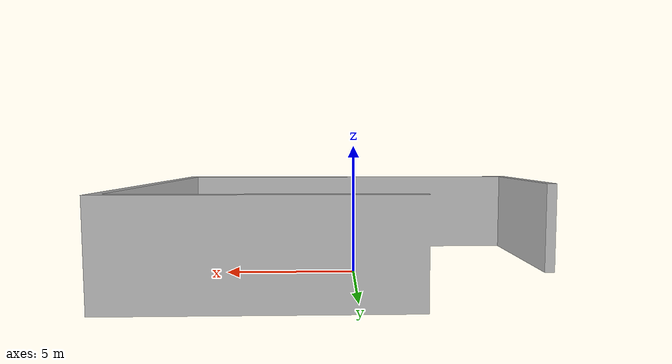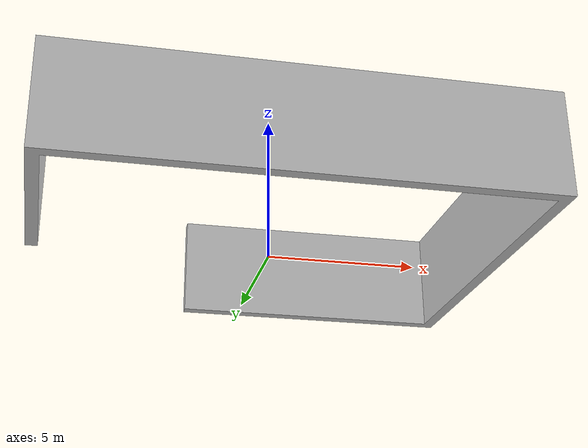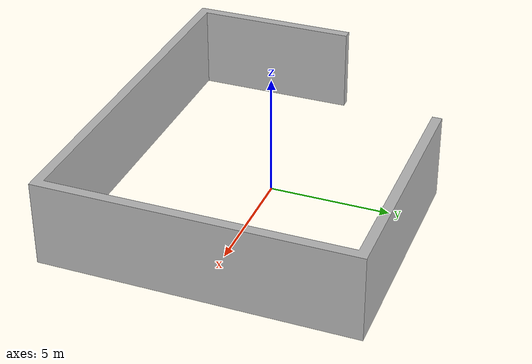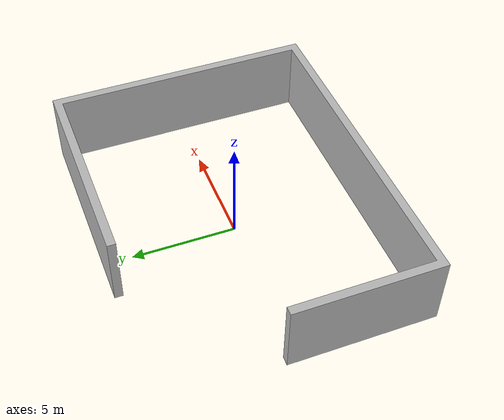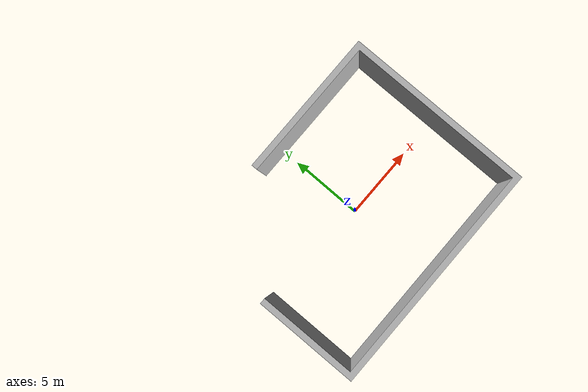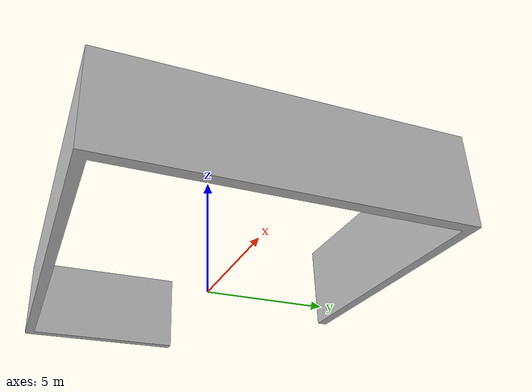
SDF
<?xml version="1.0"?>
<sdf version="1.5">
    <model name="natural_outer_wall_1">
        <static>true</static>
        <link name="link">
            <collision name="collision">
                <pose>0 0 0.05 0 0 0</pose>
                <geometry>
                    <mesh>
                        <uri>model://natural_outer_wall_1/meshes/outer_wall1.dae</uri>
                        <scale>1.0 1.0 1.0</scale>
                    </mesh>
                </geometry>
            </collision>
            <visual name="visual">
              <pose>0 0 0.05 0 0 0</pose>
              <geometry>
              <mesh>
                 <uri>model://natural_outer_wall_1/meshes/outer_wall1.dae</uri>
                 <scale>1.0 1.0 1.0</scale>
              </mesh>
              </geometry>
             </visual>
        </link>
    </model>
</sdf>
